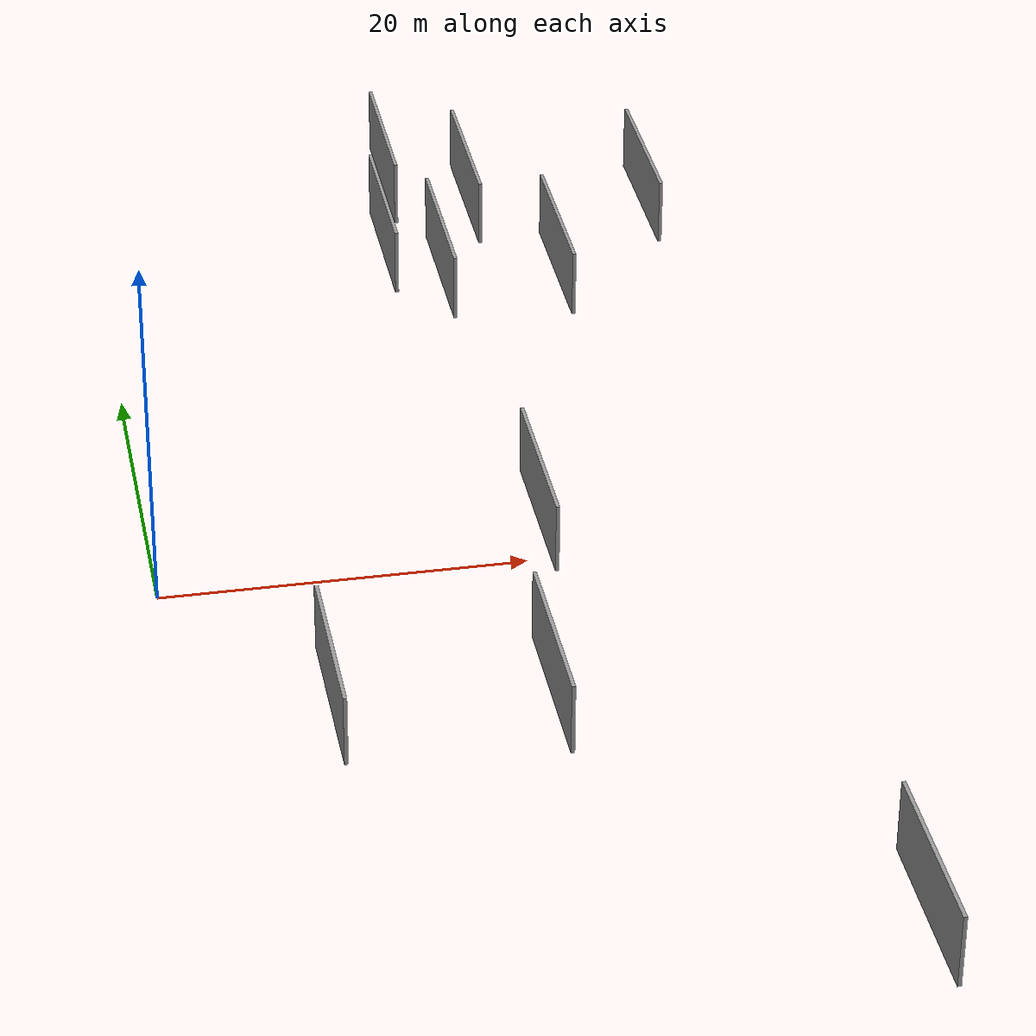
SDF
<sdf version="1.6">
 <world name="default">
  <scene>
   <sky><clouds><speed>12</speed></clouds></sky>
   <ambient>0.4 0.4 0.4 1</ambient>
   <background>0.7 0.7 0.7 1</background>
   <shadows>1</shadows>
  </scene>
  <gravity>0 0 -9.8066</gravity>
  <magnetic_field>6e-06 2.3e-05 -4.2e-05</magnetic_field>
  <physics default="0" name="default_physics" type="ode">
   <ode>
    <solver>
     <type>quick</type>
     <iters>10</iters>
     <sor>1.0</sor>
     <use_dynamic_moi_rescaling>0</use_dynamic_moi_rescaling>
    </solver>
    <constraints>
     <cfm>0</cfm>
     <erp>0.2</erp>
     <contact_max_correcting_vel>100</contact_max_correcting_vel>
     <contact_surface_layer>0.001</contact_surface_layer>
    </constraints>
   </ode>
   <max_step_size>0.004</max_step_size>
   <real_time_factor>1</real_time_factor>
   <real_time_update_rate>250</real_time_update_rate>
  </physics>
  <light name="sun" type="directional">
   <pose>0 0 10 0 0 0</pose>
   <diffuse>0.8 0.8 0.8 1</diffuse>
   <specular>0.2 0.2 0.2 1</specular>
   <attenuation>
    <range>1000</range>
    <constant>0.9</constant>
    <linear>0.01</linear>
    <quadratic>0.001</quadratic>
   </attenuation>
   <direction>-0.5 0.1 -0.9</direction>
  </light>
  <model name="grey_wall_1">
   <static>1</static>
   <pose>33.7402 33.9486 2.5 0.000000 0.000000 1.570796</pose>
   <link name="link">
    <pose>0 0 2.00 0 0 0</pose>
    <collision name="collision"><geometry><box><size>10.00 0.2 4.00</size></box></geometry></collision>
    <visual name="visual">
     <cast_shadows>0</cast_shadows>
     <geometry><box><size>10.00 0.2 4.00</size></box></geometry>
     <material>
      <script>
       <uri>model://grey_wall/materials/scripts</uri>
       <uri>model://grey_wall/materials/textures</uri>
       <name>vrc/grey_wall</name>
      </script>
     </material>
    </visual>
   </link>
  </model>
  <model name="grey_wall_2">
   <static>1</static>
   <pose>26.8600 26.3075 2.5 0.000000 0.000000 1.570796</pose>
   <link name="link">
    <pose>0 0 2.00 0 0 0</pose>
    <collision name="collision"><geometry><box><size>10.00 0.2 4.00</size></box></geometry></collision>
    <visual name="visual">
     <cast_shadows>0</cast_shadows>
     <geometry><box><size>10.00 0.2 4.00</size></box></geometry>
     <material>
      <script>
       <uri>model://grey_wall/materials/scripts</uri>
       <uri>model://grey_wall/materials/textures</uri>
       <name>vrc/grey_wall</name>
      </script>
     </material>
    </visual>
   </link>
  </model>
  <model name="grey_wall_3">
   <static>1</static>
   <pose>18.3426 -15.4577 2.5 0.000000 0.000000 1.570796</pose>
   <link name="link">
    <pose>0 0 2.00 0 0 0</pose>
    <collision name="collision"><geometry><box><size>10.00 0.2 4.00</size></box></geometry></collision>
    <visual name="visual">
     <cast_shadows>0</cast_shadows>
     <geometry><box><size>10.00 0.2 4.00</size></box></geometry>
     <material>
      <script>
       <uri>model://grey_wall/materials/scripts</uri>
       <uri>model://grey_wall/materials/textures</uri>
       <name>vrc/grey_wall</name>
      </script>
     </material>
    </visual>
   </link>
  </model>
  <model name="grey_wall_4">
   <static>1</static>
   <pose>31.9748 -35.5067 2.5 0.000000 0.000000 1.570796</pose>
   <link name="link">
    <pose>0 0 2.00 0 0 0</pose>
    <collision name="collision"><geometry><box><size>10.00 0.2 4.00</size></box></geometry></collision>
    <visual name="visual">
     <cast_shadows>0</cast_shadows>
     <geometry><box><size>10.00 0.2 4.00</size></box></geometry>
     <material>
      <script>
       <uri>model://grey_wall/materials/scripts</uri>
       <uri>model://grey_wall/materials/textures</uri>
       <name>vrc/grey_wall</name>
      </script>
     </material>
    </visual>
   </link>
  </model>
  <model name="grey_wall_5">
   <static>1</static>
   <pose>17.0528 30.6622 2.5 0.000000 0.000000 1.570796</pose>
   <link name="link">
    <pose>0 0 2.00 0 0 0</pose>
    <collision name="collision"><geometry><box><size>10.00 0.2 4.00</size></box></geometry></collision>
    <visual name="visual">
     <cast_shadows>0</cast_shadows>
     <geometry><box><size>10.00 0.2 4.00</size></box></geometry>
     <material>
      <script>
       <uri>model://grey_wall/materials/scripts</uri>
       <uri>model://grey_wall/materials/textures</uri>
       <name>vrc/grey_wall</name>
      </script>
     </material>
    </visual>
   </link>
  </model>
  <model name="grey_wall_6">
   <static>1</static>
   <pose>20.6767 0.1733 2.5 0.000000 0.000000 1.570796</pose>
   <link name="link">
    <pose>0 0 2.00 0 0 0</pose>
    <collision name="collision"><geometry><box><size>10.00 0.2 4.00</size></box></geometry></collision>
    <visual name="visual">
     <cast_shadows>0</cast_shadows>
     <geometry><box><size>10.00 0.2 4.00</size></box></geometry>
     <material>
      <script>
       <uri>model://grey_wall/materials/scripts</uri>
       <uri>model://grey_wall/materials/textures</uri>
       <name>vrc/grey_wall</name>
      </script>
     </material>
    </visual>
   </link>
  </model>
  <model name="grey_wall_7">
   <static>1</static>
   <pose>18.3615 39.1076 2.5 0.000000 0.000000 1.570796</pose>
   <link name="link">
    <pose>0 0 2.00 0 0 0</pose>
    <collision name="collision"><geometry><box><size>10.00 0.2 4.00</size></box></geometry></collision>
    <visual name="visual">
     <cast_shadows>0</cast_shadows>
     <geometry><box><size>10.00 0.2 4.00</size></box></geometry>
     <material>
      <script>
       <uri>model://grey_wall/materials/scripts</uri>
       <uri>model://grey_wall/materials/textures</uri>
       <name>vrc/grey_wall</name>
      </script>
     </material>
    </visual>
   </link>
  </model>
  <model name="grey_wall_8">
   <static>1</static>
   <pose>22.9904 35.7455 2.5 0.000000 0.000000 1.570796</pose>
   <link name="link">
    <pose>0 0 2.00 0 0 0</pose>
    <collision name="collision"><geometry><box><size>10.00 0.2 4.00</size></box></geometry></collision>
    <visual name="visual">
     <cast_shadows>0</cast_shadows>
     <geometry><box><size>10.00 0.2 4.00</size></box></geometry>
     <material>
      <script>
       <uri>model://grey_wall/materials/scripts</uri>
       <uri>model://grey_wall/materials/textures</uri>
       <name>vrc/grey_wall</name>
      </script>
     </material>
    </visual>
   </link>
  </model>
  <model name="grey_wall_9">
   <static>1</static>
   <pose>7.3101 -14.4348 2.5 0.000000 0.000000 1.570796</pose>
   <link name="link">
    <pose>0 0 2.00 0 0 0</pose>
    <collision name="collision"><geometry><box><size>10.00 0.2 4.00</size></box></geometry></collision>
    <visual name="visual">
     <cast_shadows>0</cast_shadows>
     <geometry><box><size>10.00 0.2 4.00</size></box></geometry>
     <material>
      <script>
       <uri>model://grey_wall/materials/scripts</uri>
       <uri>model://grey_wall/materials/textures</uri>
       <name>vrc/grey_wall</name>
      </script>
     </material>
    </visual>
   </link>
  </model>
  <model name="grey_wall_10">
   <static>1</static>
   <pose>19.9562 27.0852 2.5 0.000000 0.000000 1.570796</pose>
   <link name="link">
    <pose>0 0 2.00 0 0 0</pose>
    <collision name="collision"><geometry><box><size>10.00 0.2 4.00</size></box></geometry></collision>
    <visual name="visual">
     <cast_shadows>0</cast_shadows>
     <geometry><box><size>10.00 0.2 4.00</size></box></geometry>
     <material>
      <script>
       <uri>model://grey_wall/materials/scripts</uri>
       <uri>model://grey_wall/materials/textures</uri>
       <name>vrc/grey_wall</name>
      </script>
     </material>
    </visual>
   </link>
  </model>
 </world>
</sdf>
